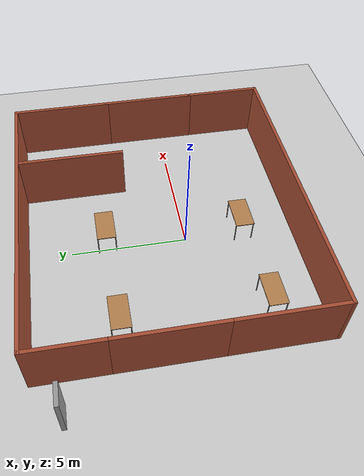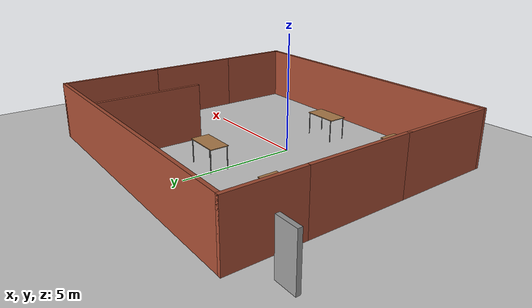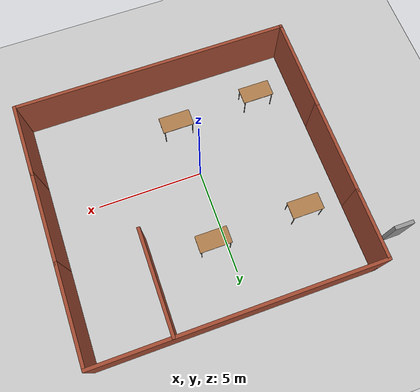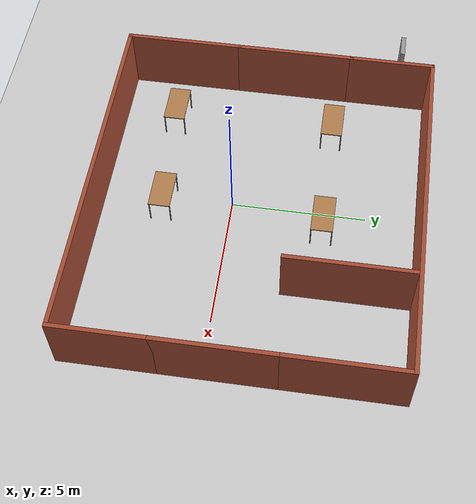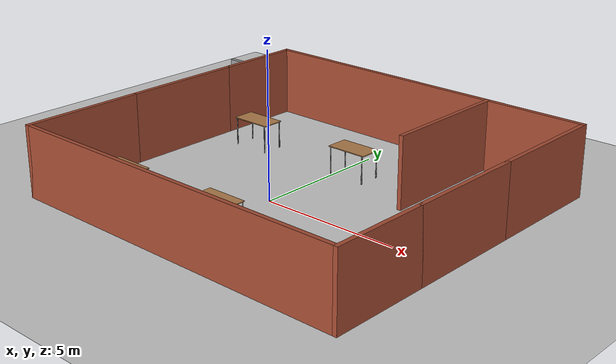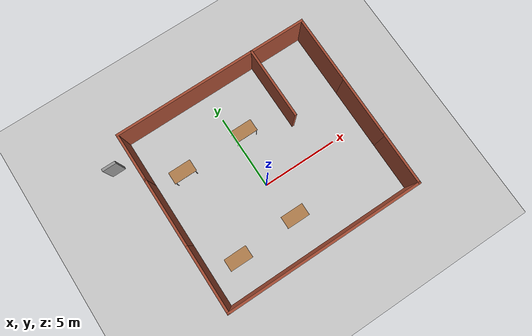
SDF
<sdf version="1.7">
 <world name="default">
  <light name="sun" type="directional">
   <pose>0 0 10 0 -0 0</pose>
   <diffuse>0.8 0.8 0.8 1</diffuse>
   <specular>0.2 0.2 0.2 1</specular>
   <attenuation>
    <range>1000</range>
    <constant>0.9</constant>
    <linear>0.01</linear>
    <quadratic>0.001</quadratic>
   </attenuation>
   <direction>-0.5 0.1 -0.9</direction>
   <spot><inner_angle>0</inner_angle><outer_angle>0</outer_angle><falloff>0</falloff></spot>
  </light>
  <model name="ground_plane">
   <static>1</static>
   <link name="link">
    <collision name="collision">
     <geometry><plane><normal>0 0 1</normal><size>100 100</size></plane></geometry>
     <surface>
      <contact><collide_bitmask>65535</collide_bitmask></contact>
      <friction><ode><mu>100</mu><mu2>50</mu2></ode></friction>
     </surface>
    </collision>
    <visual name="visual">
     <cast_shadows>0</cast_shadows>
     <geometry><plane><normal>0 0 1</normal><size>100 100</size></plane></geometry>
     <material>
      <script><uri>file://media/materials/scripts/gazebo.material</uri><name>Gazebo/Grey</name></script>
     </material>
    </visual>
   </link>
  </model>
  <gravity>0 0 -9.8</gravity>
  <magnetic_field>6e-06 2.3e-05 -4.2e-05</magnetic_field>
  <atmosphere type="adiabatic"/>
  <physics type="ode">
   <max_step_size>0.001</max_step_size>
   <real_time_factor>1</real_time_factor>
   <real_time_update_rate>1000</real_time_update_rate>
  </physics>
  <scene><ambient>0.4 0.4 0.4 1</ambient><background>0.7 0.7 0.7 1</background><shadows>1</shadows></scene>
  <audio><device>default</device></audio>
  <spherical_coordinates>
   <surface_model>EARTH_WGS84</surface_model>
   <latitude_deg>0</latitude_deg>
   <longitude_deg>0</longitude_deg>
   <elevation>0</elevation>
   <heading_deg>0</heading_deg>
  </spherical_coordinates>
  <model name="Untitled">
   <pose>0.665 1.02 0 0 -0 0</pose>
   <link name="Door_0">
    <collision name="Door_0_Collision">
     <geometry><box><size>0.9 0.17 2</size></box></geometry>
     <pose>0 0 1 0 -0 0</pose>
    </collision>
    <visual name="Door_0_Visual">
     <pose>0 0 1 0 -0 0</pose>
     <geometry><box><size>0.9 0.17 2</size></box></geometry>
     <material>
      <script><uri>file://media/materials/scripts/gazebo.material</uri><name>Gazebo/Grey</name></script>
     </material>
    </visual>
    <pose>-7.835 4.76 0 0 -0 0</pose>
   </link>
   <link name="Wall_0">
    <collision name="Wall_0_Collision">
     <geometry><box><size>4.5 0.15 2.5</size></box></geometry>
     <pose>0 0 1.25 0 -0 0</pose>
    </collision>
    <visual name="Wall_0_Visual">
     <pose>0 0 1.25 0 -0 0</pose>
     <geometry><box><size>4.5 0.15 2.5</size></box></geometry>
     <material>
      <script><uri>file://media/materials/scripts/gazebo.material</uri><name>Gazebo/Bricks</name></script>
      <ambient>1 1 1 1</ambient>
     </material>
     <meta><layer>0</layer></meta>
    </visual>
    <pose>-6.425 -3.725 0 0 -0 1.5708</pose>
   </link>
   <link name="Wall_10">
    <collision name="Wall_10_Collision">
     <geometry><box><size>4.25 0.15 2.5</size></box></geometry>
     <pose>0 0 1.25 0 -0 0</pose>
    </collision>
    <visual name="Wall_10_Visual">
     <pose>0 0 1.25 0 -0 0</pose>
     <geometry><box><size>4.25 0.15 2.5</size></box></geometry>
     <material>
      <script><uri>file://media/materials/scripts/gazebo.material</uri><name>Gazebo/Bricks</name></script>
      <ambient>1 1 1 1</ambient>
     </material>
     <meta><layer>0</layer></meta>
    </visual>
    <pose>6.425 -0.5 0 0 -0 -1.5708</pose>
   </link>
   <link name="Wall_12">
    <collision name="Wall_12_Collision">
     <geometry><box><size>13 0.15 2.5</size></box></geometry>
     <pose>0 0 1.25 0 -0 0</pose>
    </collision>
    <visual name="Wall_12_Visual">
     <pose>0 0 1.25 0 -0 0</pose>
     <geometry><box><size>13 0.15 2.5</size></box></geometry>
     <material>
      <script><uri>file://media/materials/scripts/gazebo.material</uri><name>Gazebo/Bricks</name></script>
      <ambient>1 1 1 1</ambient>
     </material>
     <meta><layer>0</layer></meta>
    </visual>
    <pose>0 -5.9 0 0 -0 0</pose>
   </link>
   <link name="Wall_13">
    <collision name="Wall_13_Collision">
     <geometry><box><size>3.5 0.15 2.5</size></box></geometry>
     <pose>0 0 1.25 0 -0 0</pose>
    </collision>
    <visual name="Wall_13_Visual">
     <pose>0 0 1.25 0 -0 0</pose>
     <geometry><box><size>3.5 0.15 2.5</size></box></geometry>
     <material>
      <script><uri>file://media/materials/scripts/gazebo.material</uri><name>Gazebo/Bricks</name></script>
      <ambient>1 1 1 1</ambient>
     </material>
     <meta><layer>0</layer></meta>
    </visual>
    <pose>6.425 -4.225 0 0 -0 1.5708</pose>
   </link>
   <link name="Wall_15">
    <collision name="Wall_15_Collision">
     <geometry><box><size>4.75 0.15 2.5</size></box></geometry>
     <pose>0 0 1.25 0 -0 0</pose>
    </collision>
    <visual name="Wall_15_Visual">
     <pose>0 0 1.25 0 -0 0</pose>
     <geometry><box><size>4.75 0.15 2.5</size></box></geometry>
     <material>
      <script><uri>file://media/materials/scripts/gazebo.material</uri><name>Gazebo/Bricks</name></script>
      <ambient>1 1 1 1</ambient>
     </material>
     <meta><layer>0</layer></meta>
    </visual>
    <pose>2.825 3.59 0 0 -0 -1.5708</pose>
   </link>
   <link name="Wall_2">
    <collision name="Wall_2_Collision">
     <geometry><box><size>4.5 0.15 2.5</size></box></geometry>
     <pose>0 0 1.25 0 -0 0</pose>
    </collision>
    <visual name="Wall_2_Visual">
     <pose>0 0 1.25 0 -0 0</pose>
     <geometry><box><size>4.5 0.15 2.5</size></box></geometry>
     <material>
      <script><uri>file://media/materials/scripts/gazebo.material</uri><name>Gazebo/Bricks</name></script>
      <ambient>1 1 1 1</ambient>
     </material>
     <meta><layer>0</layer></meta>
    </visual>
    <pose>-6.425 0.625 0 0 -0 1.5708</pose>
   </link>
   <link name="Wall_4">
    <collision name="Wall_4_Collision">
     <geometry><box><size>3.25 0.15 2.5</size></box></geometry>
     <pose>0 0 1.25 0 -0 0</pose>
    </collision>
    <visual name="Wall_4_Visual">
     <pose>0 0 1.25 0 -0 0</pose>
     <geometry><box><size>3.25 0.15 2.5</size></box></geometry>
     <material>
      <script><uri>file://media/materials/scripts/gazebo.material</uri><name>Gazebo/Bricks</name></script>
      <ambient>1 1 1 1</ambient>
     </material>
     <meta><layer>0</layer></meta>
    </visual>
    <pose>-6.425 4.35 0 0 -0 1.5708</pose>
   </link>
   <link name="Wall_5">
    <collision name="Wall_5_Collision">
     <geometry><box><size>13 0.15 2.5</size></box></geometry>
     <pose>0 0 1.25 0 -0 0</pose>
    </collision>
    <visual name="Wall_5_Visual">
     <pose>0 0 1.25 0 -0 0</pose>
     <geometry><box><size>13 0.15 2.5</size></box></geometry>
     <material>
      <script><uri>file://media/materials/scripts/gazebo.material</uri><name>Gazebo/Bricks</name></script>
      <ambient>1 1 1 1</ambient>
     </material>
     <meta><layer>0</layer></meta>
    </visual>
    <pose>0 5.9 0 0 -0 0</pose>
   </link>
   <link name="Wall_8">
    <collision name="Wall_8_Collision">
     <geometry><box><size>4.5 0.15 2.5</size></box></geometry>
     <pose>0 0 1.25 0 -0 0</pose>
    </collision>
    <visual name="Wall_8_Visual">
     <pose>0 0 1.25 0 -0 0</pose>
     <geometry><box><size>4.5 0.15 2.5</size></box></geometry>
     <material>
      <script><uri>file://media/materials/scripts/gazebo.material</uri><name>Gazebo/Bricks</name></script>
      <ambient>1 1 1 1</ambient>
     </material>
     <meta><layer>0</layer></meta>
    </visual>
    <pose>6.425 3.725 0 0 -0 -1.5708</pose>
   </link>
   <static>1</static>
  </model>
  <model name="table">
   <static>1</static>
   <link name="link">
    <collision name="surface">
     <pose>0 0 1 0 -0 0</pose>
     <geometry><box><size>1.5 0.8 0.03</size></box></geometry>
     <surface><friction><ode><mu>0.6</mu><mu2>0.6</mu2></ode></friction></surface>
    </collision>
    <visual name="visual1">
     <pose>0 0 1 0 -0 0</pose>
     <geometry><box><size>1.5 0.8 0.03</size></box></geometry>
     <material>
      <script><uri>file://media/materials/scripts/gazebo.material</uri><name>Gazebo/Wood</name></script>
     </material>
    </visual>
    <collision name="front_left_leg">
     <pose>0.68 0.38 0.5 0 -0 0</pose>
     <geometry><cylinder><radius>0.02</radius><length>1</length></cylinder></geometry>
    </collision>
    <visual name="front_left_leg">
     <pose>0.68 0.38 0.5 0 -0 0</pose>
     <geometry><cylinder><radius>0.02</radius><length>1</length></cylinder></geometry>
     <material>
      <script><uri>file://media/materials/scripts/gazebo.material</uri><name>Gazebo/Grey</name></script>
     </material>
    </visual>
    <collision name="front_right_leg">
     <pose>0.68 -0.38 0.5 0 -0 0</pose>
     <geometry><cylinder><radius>0.02</radius><length>1</length></cylinder></geometry>
    </collision>
    <visual name="front_right_leg">
     <pose>0.68 -0.38 0.5 0 -0 0</pose>
     <geometry><cylinder><radius>0.02</radius><length>1</length></cylinder></geometry>
     <material>
      <script><uri>file://media/materials/scripts/gazebo.material</uri><name>Gazebo/Grey</name></script>
     </material>
    </visual>
    <collision name="back_right_leg">
     <pose>-0.68 -0.38 0.5 0 -0 0</pose>
     <geometry><cylinder><radius>0.02</radius><length>1</length></cylinder></geometry>
    </collision>
    <visual name="back_right_leg">
     <pose>-0.68 -0.38 0.5 0 -0 0</pose>
     <geometry><cylinder><radius>0.02</radius><length>1</length></cylinder></geometry>
     <material>
      <script><uri>file://media/materials/scripts/gazebo.material</uri><name>Gazebo/Grey</name></script>
     </material>
    </visual>
    <collision name="back_left_leg">
     <pose>-0.68 0.38 0.5 0 -0 0</pose>
     <geometry><cylinder><radius>0.02</radius><length>1</length></cylinder></geometry>
    </collision>
    <visual name="back_left_leg">
     <pose>-0.68 0.38 0.5 0 -0 0</pose>
     <geometry><cylinder><radius>0.02</radius><length>1</length></cylinder></geometry>
     <material>
      <script><uri>file://media/materials/scripts/gazebo.material</uri><name>Gazebo/Grey</name></script>
     </material>
    </visual>
   </link>
   <pose>0.592622 3.44779 0 0 -0 0</pose>
  </model>
  <model name="table_0">
   <static>1</static>
   <link name="link">
    <collision name="surface">
     <pose>0 0 1 0 -0 0</pose>
     <geometry><box><size>1.5 0.8 0.03</size></box></geometry>
     <surface><friction><ode><mu>0.6</mu><mu2>0.6</mu2></ode></friction></surface>
    </collision>
    <visual name="visual1">
     <pose>0 0 1 0 -0 0</pose>
     <geometry><box><size>1.5 0.8 0.03</size></box></geometry>
     <material>
      <script><uri>file://media/materials/scripts/gazebo.material</uri><name>Gazebo/Wood</name></script>
     </material>
    </visual>
    <collision name="front_left_leg">
     <pose>0.68 0.38 0.5 0 -0 0</pose>
     <geometry><cylinder><radius>0.02</radius><length>1</length></cylinder></geometry>
    </collision>
    <visual name="front_left_leg">
     <pose>0.68 0.38 0.5 0 -0 0</pose>
     <geometry><cylinder><radius>0.02</radius><length>1</length></cylinder></geometry>
     <material>
      <script><uri>file://media/materials/scripts/gazebo.material</uri><name>Gazebo/Grey</name></script>
     </material>
    </visual>
    <collision name="front_right_leg">
     <pose>0.68 -0.38 0.5 0 -0 0</pose>
     <geometry><cylinder><radius>0.02</radius><length>1</length></cylinder></geometry>
    </collision>
    <visual name="front_right_leg">
     <pose>0.68 -0.38 0.5 0 -0 0</pose>
     <geometry><cylinder><radius>0.02</radius><length>1</length></cylinder></geometry>
     <material>
      <script><uri>file://media/materials/scripts/gazebo.material</uri><name>Gazebo/Grey</name></script>
     </material>
    </visual>
    <collision name="back_right_leg">
     <pose>-0.68 -0.38 0.5 0 -0 0</pose>
     <geometry><cylinder><radius>0.02</radius><length>1</length></cylinder></geometry>
    </collision>
    <visual name="back_right_leg">
     <pose>-0.68 -0.38 0.5 0 -0 0</pose>
     <geometry><cylinder><radius>0.02</radius><length>1</length></cylinder></geometry>
     <material>
      <script><uri>file://media/materials/scripts/gazebo.material</uri><name>Gazebo/Grey</name></script>
     </material>
    </visual>
    <collision name="back_left_leg">
     <pose>-0.68 0.38 0.5 0 -0 0</pose>
     <geometry><cylinder><radius>0.02</radius><length>1</length></cylinder></geometry>
    </collision>
    <visual name="back_left_leg">
     <pose>-0.68 0.38 0.5 0 -0 0</pose>
     <geometry><cylinder><radius>0.02</radius><length>1</length></cylinder></geometry>
     <material>
      <script><uri>file://media/materials/scripts/gazebo.material</uri><name>Gazebo/Grey</name></script>
     </material>
    </visual>
   </link>
   <pose>0.323243 -2.53197 0 0 -0 0</pose>
  </model>
  <model name="table_1">
   <static>1</static>
   <link name="link">
    <collision name="surface">
     <pose>0 0 1 0 -0 0</pose>
     <geometry><box><size>1.5 0.8 0.03</size></box></geometry>
     <surface><friction><ode><mu>0.6</mu><mu2>0.6</mu2></ode></friction></surface>
    </collision>
    <visual name="visual1">
     <pose>0 0 1 0 -0 0</pose>
     <geometry><box><size>1.5 0.8 0.03</size></box></geometry>
     <material>
      <script><uri>file://media/materials/scripts/gazebo.material</uri><name>Gazebo/Wood</name></script>
     </material>
    </visual>
    <collision name="front_left_leg">
     <pose>0.68 0.38 0.5 0 -0 0</pose>
     <geometry><cylinder><radius>0.02</radius><length>1</length></cylinder></geometry>
    </collision>
    <visual name="front_left_leg">
     <pose>0.68 0.38 0.5 0 -0 0</pose>
     <geometry><cylinder><radius>0.02</radius><length>1</length></cylinder></geometry>
     <material>
      <script><uri>file://media/materials/scripts/gazebo.material</uri><name>Gazebo/Grey</name></script>
     </material>
    </visual>
    <collision name="front_right_leg">
     <pose>0.68 -0.38 0.5 0 -0 0</pose>
     <geometry><cylinder><radius>0.02</radius><length>1</length></cylinder></geometry>
    </collision>
    <visual name="front_right_leg">
     <pose>0.68 -0.38 0.5 0 -0 0</pose>
     <geometry><cylinder><radius>0.02</radius><length>1</length></cylinder></geometry>
     <material>
      <script><uri>file://media/materials/scripts/gazebo.material</uri><name>Gazebo/Grey</name></script>
     </material>
    </visual>
    <collision name="back_right_leg">
     <pose>-0.68 -0.38 0.5 0 -0 0</pose>
     <geometry><cylinder><radius>0.02</radius><length>1</length></cylinder></geometry>
    </collision>
    <visual name="back_right_leg">
     <pose>-0.68 -0.38 0.5 0 -0 0</pose>
     <geometry><cylinder><radius>0.02</radius><length>1</length></cylinder></geometry>
     <material>
      <script><uri>file://media/materials/scripts/gazebo.material</uri><name>Gazebo/Grey</name></script>
     </material>
    </visual>
    <collision name="back_left_leg">
     <pose>-0.68 0.38 0.5 0 -0 0</pose>
     <geometry><cylinder><radius>0.02</radius><length>1</length></cylinder></geometry>
    </collision>
    <visual name="back_left_leg">
     <pose>-0.68 0.38 0.5 0 -0 0</pose>
     <geometry><cylinder><radius>0.02</radius><length>1</length></cylinder></geometry>
     <material>
      <script><uri>file://media/materials/scripts/gazebo.material</uri><name>Gazebo/Grey</name></script>
     </material>
    </visual>
   </link>
   <pose>-3.8249 3.36699 0 0 -0 0</pose>
  </model>
  <model name="table_2">
   <static>1</static>
   <link name="link">
    <collision name="surface">
     <pose>0 0 1 0 -0 0</pose>
     <geometry><box><size>1.5 0.8 0.03</size></box></geometry>
     <surface><friction><ode><mu>0.6</mu><mu2>0.6</mu2></ode></friction></surface>
    </collision>
    <visual name="visual1">
     <pose>0 0 1 0 -0 0</pose>
     <geometry><box><size>1.5 0.8 0.03</size></box></geometry>
     <material>
      <script><uri>file://media/materials/scripts/gazebo.material</uri><name>Gazebo/Wood</name></script>
     </material>
    </visual>
    <collision name="front_left_leg">
     <pose>0.68 0.38 0.5 0 -0 0</pose>
     <geometry><cylinder><radius>0.02</radius><length>1</length></cylinder></geometry>
    </collision>
    <visual name="front_left_leg">
     <pose>0.68 0.38 0.5 0 -0 0</pose>
     <geometry><cylinder><radius>0.02</radius><length>1</length></cylinder></geometry>
     <material>
      <script><uri>file://media/materials/scripts/gazebo.material</uri><name>Gazebo/Grey</name></script>
     </material>
    </visual>
    <collision name="front_right_leg">
     <pose>0.68 -0.38 0.5 0 -0 0</pose>
     <geometry><cylinder><radius>0.02</radius><length>1</length></cylinder></geometry>
    </collision>
    <visual name="front_right_leg">
     <pose>0.68 -0.38 0.5 0 -0 0</pose>
     <geometry><cylinder><radius>0.02</radius><length>1</length></cylinder></geometry>
     <material>
      <script><uri>file://media/materials/scripts/gazebo.material</uri><name>Gazebo/Grey</name></script>
     </material>
    </visual>
    <collision name="back_right_leg">
     <pose>-0.68 -0.38 0.5 0 -0 0</pose>
     <geometry><cylinder><radius>0.02</radius><length>1</length></cylinder></geometry>
    </collision>
    <visual name="back_right_leg">
     <pose>-0.68 -0.38 0.5 0 -0 0</pose>
     <geometry><cylinder><radius>0.02</radius><length>1</length></cylinder></geometry>
     <material>
      <script><uri>file://media/materials/scripts/gazebo.material</uri><name>Gazebo/Grey</name></script>
     </material>
    </visual>
    <collision name="back_left_leg">
     <pose>-0.68 0.38 0.5 0 -0 0</pose>
     <geometry><cylinder><radius>0.02</radius><length>1</length></cylinder></geometry>
    </collision>
    <visual name="back_left_leg">
     <pose>-0.68 0.38 0.5 0 -0 0</pose>
     <geometry><cylinder><radius>0.02</radius><length>1</length></cylinder></geometry>
     <material>
      <script><uri>file://media/materials/scripts/gazebo.material</uri><name>Gazebo/Grey</name></script>
     </material>
    </visual>
   </link>
   <pose>-3.803 -2.74776 0 0 -0 0</pose>
  </model>
 </world>
</sdf>
